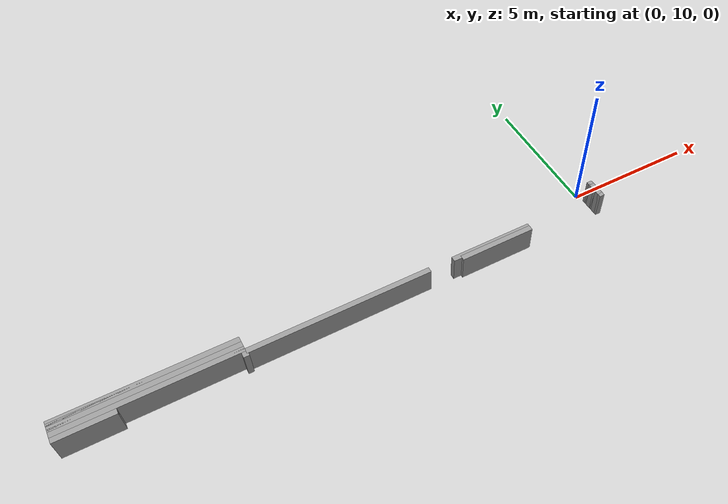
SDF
<sdf version="1.6">
 <world name="GridMap">
  <model name="GridMap">
   <link name="Wall_(46.0,86.0)">
    <collision name="Wall_(46.0,86.0)_Collision">
     <geometry><box><size>2.8 0.2 1.0</size></box></geometry>
     <pose>-4.6 8.6 0.5 0 -0 0</pose>
    </collision>
    <visual name="Wall_(46.0,86.0)_Visual">
     <geometry><box><size>2.8 0.2 1.0</size></box></geometry>
     <pose>-4.6 8.6 0.5 0 -0 0</pose>
     <material>
      <script><uri>file://media/materials/scripts/gazebo.material</uri><name>Gazebo/Grey</name></script>
      <ambient>1 1 1 1</ambient>
     </material>
     <meta><layer>0</layer></meta>
    </visual>
    <pose>0 0 0.5 0 -0 0</pose>
   </link>
   <link name="Wall_(138.5,86.0)">
    <collision name="Wall_(138.5,86.0)_Collision">
     <geometry><box><size>0.2 0.2 1.0</size></box></geometry>
     <pose>-13.85 8.6 0.5 0 -0 0</pose>
    </collision>
    <visual name="Wall_(138.5,86.0)_Visual">
     <geometry><box><size>0.2 0.2 1.0</size></box></geometry>
     <pose>-13.85 8.6 0.5 0 -0 0</pose>
     <material>
      <script><uri>file://media/materials/scripts/gazebo.material</uri><name>Gazebo/Grey</name></script>
      <ambient>1 1 1 1</ambient>
     </material>
     <meta><layer>0</layer></meta>
    </visual>
    <pose>0 0 0.5 0 -0 0</pose>
   </link>
   <link name="Wall_(189.0,86.0)">
    <collision name="Wall_(189.0,86.0)_Collision">
     <geometry><box><size>2.0 0.2 1.0</size></box></geometry>
     <pose>-18.9 8.6 0.5 0 -0 0</pose>
    </collision>
    <visual name="Wall_(189.0,86.0)_Visual">
     <geometry><box><size>2.0 0.2 1.0</size></box></geometry>
     <pose>-18.9 8.6 0.5 0 -0 0</pose>
     <material>
      <script><uri>file://media/materials/scripts/gazebo.material</uri><name>Gazebo/Grey</name></script>
      <ambient>1 1 1 1</ambient>
     </material>
     <meta><layer>0</layer></meta>
    </visual>
    <pose>0 0 0.5 0 -0 0</pose>
   </link>
   <link name="Wall_(1.0,87.0)">
    <collision name="Wall_(1.0,87.0)_Collision">
     <geometry><box><size>0.2 0.2 1.0</size></box></geometry>
     <pose>-0.1 8.7 0.5 0 -0 0</pose>
    </collision>
    <visual name="Wall_(1.0,87.0)_Visual">
     <geometry><box><size>0.2 0.2 1.0</size></box></geometry>
     <pose>-0.1 8.7 0.5 0 -0 0</pose>
     <material>
      <script><uri>file://media/materials/scripts/gazebo.material</uri><name>Gazebo/Grey</name></script>
      <ambient>1 1 1 1</ambient>
     </material>
     <meta><layer>0</layer></meta>
    </visual>
    <pose>0 0 0.5 0 -0 0</pose>
   </link>
   <link name="Wall_(47.5,87.0)">
    <collision name="Wall_(47.5,87.0)_Collision">
     <geometry><box><size>3.1 0.2 1.0</size></box></geometry>
     <pose>-4.75 8.7 0.5 0 -0 0</pose>
    </collision>
    <visual name="Wall_(47.5,87.0)_Visual">
     <geometry><box><size>3.1 0.2 1.0</size></box></geometry>
     <pose>-4.75 8.7 0.5 0 -0 0</pose>
     <material>
      <script><uri>file://media/materials/scripts/gazebo.material</uri><name>Gazebo/Grey</name></script>
      <ambient>1 1 1 1</ambient>
     </material>
     <meta><layer>0</layer></meta>
    </visual>
    <pose>0 0 0.5 0 -0 0</pose>
   </link>
   <link name="Wall_(105.0,87.0)">
    <collision name="Wall_(105.0,87.0)_Collision">
     <geometry><box><size>6.6 0.2 1.0</size></box></geometry>
     <pose>-10.5 8.7 0.5 0 -0 0</pose>
    </collision>
    <visual name="Wall_(105.0,87.0)_Visual">
     <geometry><box><size>6.6 0.2 1.0</size></box></geometry>
     <pose>-10.5 8.7 0.5 0 -0 0</pose>
     <material>
      <script><uri>file://media/materials/scripts/gazebo.material</uri><name>Gazebo/Grey</name></script>
      <ambient>1 1 1 1</ambient>
     </material>
     <meta><layer>0</layer></meta>
    </visual>
    <pose>0 0 0.5 0 -0 0</pose>
   </link>
   <link name="Wall_(189.0,87.0)">
    <collision name="Wall_(189.0,87.0)_Collision">
     <geometry><box><size>2.0 0.2 1.0</size></box></geometry>
     <pose>-18.9 8.7 0.5 0 -0 0</pose>
    </collision>
    <visual name="Wall_(189.0,87.0)_Visual">
     <geometry><box><size>2.0 0.2 1.0</size></box></geometry>
     <pose>-18.9 8.7 0.5 0 -0 0</pose>
     <material>
      <script><uri>file://media/materials/scripts/gazebo.material</uri><name>Gazebo/Grey</name></script>
      <ambient>1 1 1 1</ambient>
     </material>
     <meta><layer>0</layer></meta>
    </visual>
    <pose>0 0 0.5 0 -0 0</pose>
   </link>
   <link name="Wall_(1.0,88.0)">
    <collision name="Wall_(1.0,88.0)_Collision">
     <geometry><box><size>0.2 0.2 1.0</size></box></geometry>
     <pose>-0.1 8.8 0.5 0 -0 0</pose>
    </collision>
    <visual name="Wall_(1.0,88.0)_Visual">
     <geometry><box><size>0.2 0.2 1.0</size></box></geometry>
     <pose>-0.1 8.8 0.5 0 -0 0</pose>
     <material>
      <script><uri>file://media/materials/scripts/gazebo.material</uri><name>Gazebo/Grey</name></script>
      <ambient>1 1 1 1</ambient>
     </material>
     <meta><layer>0</layer></meta>
    </visual>
    <pose>0 0 0.5 0 -0 0</pose>
   </link>
   <link name="Wall_(168.5,88.0)">
    <collision name="Wall_(168.5,88.0)_Collision">
     <geometry><box><size>6.1 0.2 1.0</size></box></geometry>
     <pose>-16.85 8.8 0.5 0 -0 0</pose>
    </collision>
    <visual name="Wall_(168.5,88.0)_Visual">
     <geometry><box><size>6.1 0.2 1.0</size></box></geometry>
     <pose>-16.85 8.8 0.5 0 -0 0</pose>
     <material>
      <script><uri>file://media/materials/scripts/gazebo.material</uri><name>Gazebo/Grey</name></script>
      <ambient>1 1 1 1</ambient>
     </material>
     <meta><layer>0</layer></meta>
    </visual>
    <pose>0 0 0.5 0 -0 0</pose>
   </link>
   <link name="Wall_(1.0,89.0)">
    <collision name="Wall_(1.0,89.0)_Collision">
     <geometry><box><size>0.2 0.2 1.0</size></box></geometry>
     <pose>-0.1 8.9 0.5 0 -0 0</pose>
    </collision>
    <visual name="Wall_(1.0,89.0)_Visual">
     <geometry><box><size>0.2 0.2 1.0</size></box></geometry>
     <pose>-0.1 8.9 0.5 0 -0 0</pose>
     <material>
      <script><uri>file://media/materials/scripts/gazebo.material</uri><name>Gazebo/Grey</name></script>
      <ambient>1 1 1 1</ambient>
     </material>
     <meta><layer>0</layer></meta>
    </visual>
    <pose>0 0 0.5 0 -0 0</pose>
   </link>
   <link name="Wall_(168.5,89.0)">
    <collision name="Wall_(168.5,89.0)_Collision">
     <geometry><box><size>6.1 0.2 1.0</size></box></geometry>
     <pose>-16.85 8.9 0.5 0 -0 0</pose>
    </collision>
    <visual name="Wall_(168.5,89.0)_Visual">
     <geometry><box><size>6.1 0.2 1.0</size></box></geometry>
     <pose>-16.85 8.9 0.5 0 -0 0</pose>
     <material>
      <script><uri>file://media/materials/scripts/gazebo.material</uri><name>Gazebo/Grey</name></script>
      <ambient>1 1 1 1</ambient>
     </material>
     <meta><layer>0</layer></meta>
    </visual>
    <pose>0 0 0.5 0 -0 0</pose>
   </link>
   <link name="Wall_(1.0,90.0)">
    <collision name="Wall_(1.0,90.0)_Collision">
     <geometry><box><size>0.2 0.2 1.0</size></box></geometry>
     <pose>-0.1 9.0 0.5 0 -0 0</pose>
    </collision>
    <visual name="Wall_(1.0,90.0)_Visual">
     <geometry><box><size>0.2 0.2 1.0</size></box></geometry>
     <pose>-0.1 9.0 0.5 0 -0 0</pose>
     <material>
      <script><uri>file://media/materials/scripts/gazebo.material</uri><name>Gazebo/Grey</name></script>
      <ambient>1 1 1 1</ambient>
     </material>
     <meta><layer>0</layer></meta>
    </visual>
    <pose>0 0 0.5 0 -0 0</pose>
   </link>
   <link name="Wall_(168.5,90.0)">
    <collision name="Wall_(168.5,90.0)_Collision">
     <geometry><box><size>6.1 0.2 1.0</size></box></geometry>
     <pose>-16.85 9.0 0.5 0 -0 0</pose>
    </collision>
    <visual name="Wall_(168.5,90.0)_Visual">
     <geometry><box><size>6.1 0.2 1.0</size></box></geometry>
     <pose>-16.85 9.0 0.5 0 -0 0</pose>
     <material>
      <script><uri>file://media/materials/scripts/gazebo.material</uri><name>Gazebo/Grey</name></script>
      <ambient>1 1 1 1</ambient>
     </material>
     <meta><layer>0</layer></meta>
    </visual>
    <pose>0 0 0.5 0 -0 0</pose>
   </link>
   <link name="Wall_(1.0,91.0)">
    <collision name="Wall_(1.0,91.0)_Collision">
     <geometry><box><size>0.2 0.2 1.0</size></box></geometry>
     <pose>-0.1 9.1 0.5 0 -0 0</pose>
    </collision>
    <visual name="Wall_(1.0,91.0)_Visual">
     <geometry><box><size>0.2 0.2 1.0</size></box></geometry>
     <pose>-0.1 9.1 0.5 0 -0 0</pose>
     <material>
      <script><uri>file://media/materials/scripts/gazebo.material</uri><name>Gazebo/Grey</name></script>
      <ambient>1 1 1 1</ambient>
     </material>
     <meta><layer>0</layer></meta>
    </visual>
    <pose>0 0 0.5 0 -0 0</pose>
   </link>
   <link name="Wall_(168.5,91.0)">
    <collision name="Wall_(168.5,91.0)_Collision">
     <geometry><box><size>6.1 0.2 1.0</size></box></geometry>
     <pose>-16.85 9.1 0.5 0 -0 0</pose>
    </collision>
    <visual name="Wall_(168.5,91.0)_Visual">
     <geometry><box><size>6.1 0.2 1.0</size></box></geometry>
     <pose>-16.85 9.1 0.5 0 -0 0</pose>
     <material>
      <script><uri>file://media/materials/scripts/gazebo.material</uri><name>Gazebo/Grey</name></script>
      <ambient>1 1 1 1</ambient>
     </material>
     <meta><layer>0</layer></meta>
    </visual>
    <pose>0 0 0.5 0 -0 0</pose>
   </link>
   <link name="Wall_(1.0,92.0)">
    <collision name="Wall_(1.0,92.0)_Collision">
     <geometry><box><size>0.2 0.2 1.0</size></box></geometry>
     <pose>-0.1 9.2 0.5 0 -0 0</pose>
    </collision>
    <visual name="Wall_(1.0,92.0)_Visual">
     <geometry><box><size>0.2 0.2 1.0</size></box></geometry>
     <pose>-0.1 9.2 0.5 0 -0 0</pose>
     <material>
      <script><uri>file://media/materials/scripts/gazebo.material</uri><name>Gazebo/Grey</name></script>
      <ambient>1 1 1 1</ambient>
     </material>
     <meta><layer>0</layer></meta>
    </visual>
    <pose>0 0 0.5 0 -0 0</pose>
   </link>
   <link name="Wall_(168.5,92.0)">
    <collision name="Wall_(168.5,92.0)_Collision">
     <geometry><box><size>6.1 0.2 1.0</size></box></geometry>
     <pose>-16.85 9.2 0.5 0 -0 0</pose>
    </collision>
    <visual name="Wall_(168.5,92.0)_Visual">
     <geometry><box><size>6.1 0.2 1.0</size></box></geometry>
     <pose>-16.85 9.2 0.5 0 -0 0</pose>
     <material>
      <script><uri>file://media/materials/scripts/gazebo.material</uri><name>Gazebo/Grey</name></script>
      <ambient>1 1 1 1</ambient>
     </material>
     <meta><layer>0</layer></meta>
    </visual>
    <pose>0 0 0.5 0 -0 0</pose>
   </link>
   <link name="Wall_(1.0,93.0)">
    <collision name="Wall_(1.0,93.0)_Collision">
     <geometry><box><size>0.2 0.2 1.0</size></box></geometry>
     <pose>-0.1 9.3 0.5 0 -0 0</pose>
    </collision>
    <visual name="Wall_(1.0,93.0)_Visual">
     <geometry><box><size>0.2 0.2 1.0</size></box></geometry>
     <pose>-0.1 9.3 0.5 0 -0 0</pose>
     <material>
      <script><uri>file://media/materials/scripts/gazebo.material</uri><name>Gazebo/Grey</name></script>
      <ambient>1 1 1 1</ambient>
     </material>
     <meta><layer>0</layer></meta>
    </visual>
    <pose>0 0 0.5 0 -0 0</pose>
   </link>
   <static>1</static>
  </model>
 </world>
</sdf>
